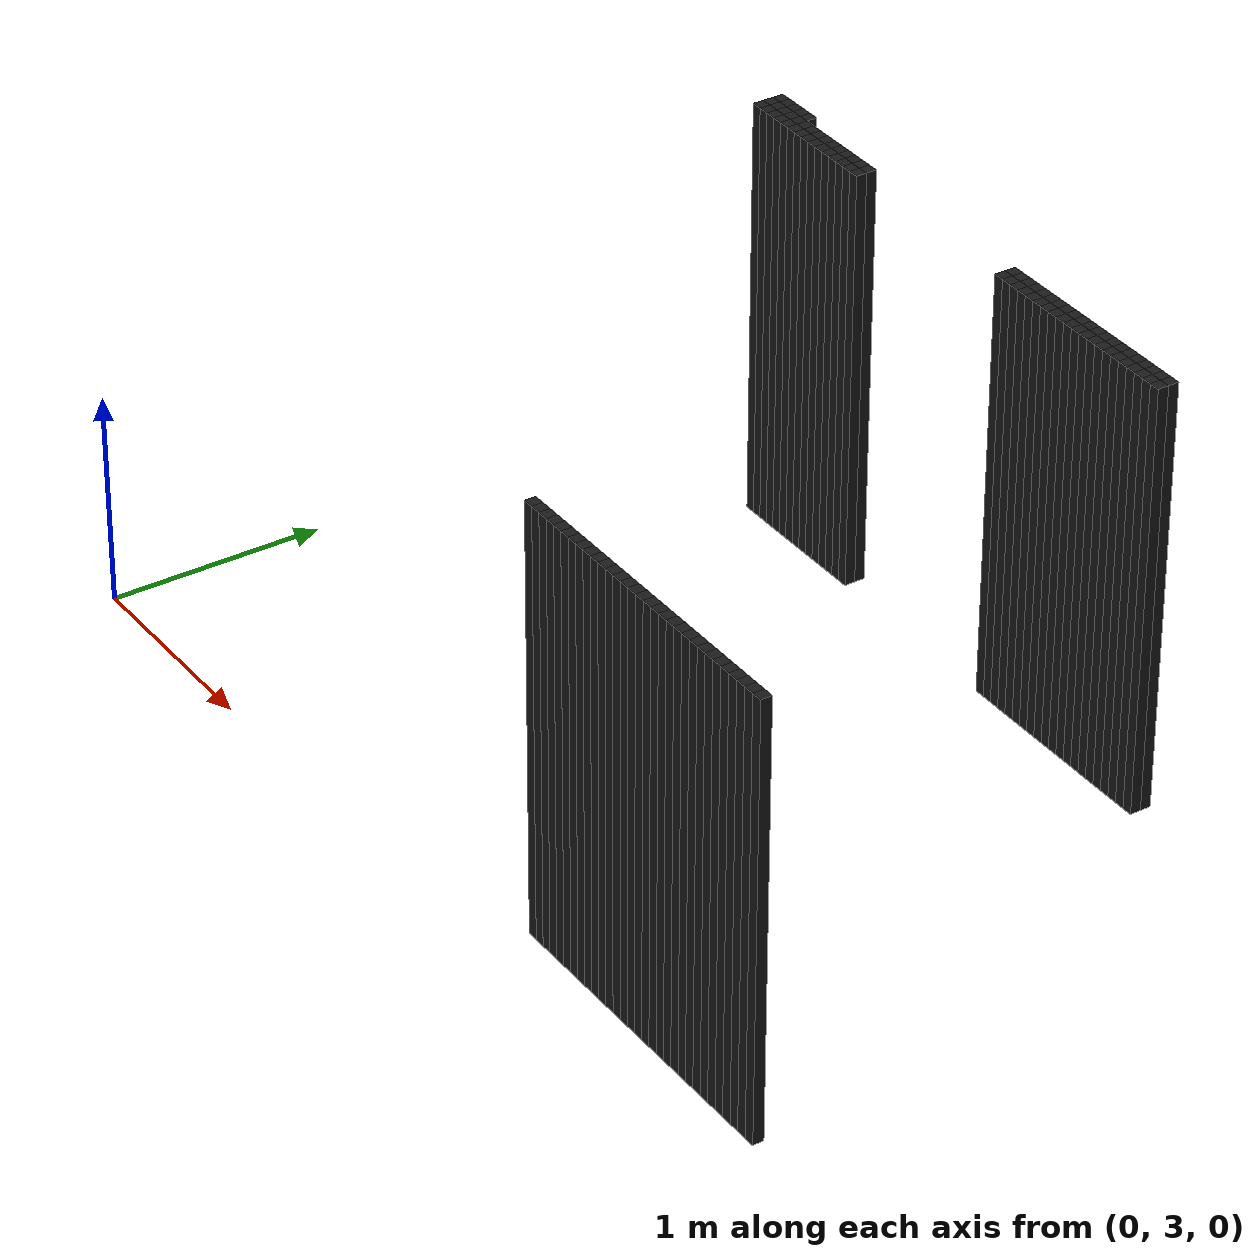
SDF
<sdf version="1.6">
 <model name="obstacle_108_51">
  <pose>0.8900000000000006 5.8 1.0 0 0 0</pose>
  <static>true</static>
  <link name="box_link">
   <collision name="box_collision"><geometry><box><size>0.05 0.05 2.0</size></box></geometry></collision>
   <visual name="box_visual">
    <geometry><box><size>0.05 0.05 2.0</size></box></geometry>
    <material><ambient>0 0 0 1</ambient><diffuse>0.1 0.1 0.1 1</diffuse></material>
   </visual>
  </link>
 </model>
 <model name="obstacle_109_51">
  <pose>0.9400000000000004 5.8 1.0 0 0 0</pose>
  <static>true</static>
  <link name="box_link">
   <collision name="box_collision"><geometry><box><size>0.05 0.05 2.0</size></box></geometry></collision>
   <visual name="box_visual">
    <geometry><box><size>0.05 0.05 2.0</size></box></geometry>
    <material><ambient>0 0 0 1</ambient><diffuse>0.1 0.1 0.1 1</diffuse></material>
   </visual>
  </link>
 </model>
 <model name="obstacle_110_51">
  <pose>0.9900000000000002 5.8 1.0 0 0 0</pose>
  <static>true</static>
  <link name="box_link">
   <collision name="box_collision"><geometry><box><size>0.05 0.05 2.0</size></box></geometry></collision>
   <visual name="box_visual">
    <geometry><box><size>0.05 0.05 2.0</size></box></geometry>
    <material><ambient>0 0 0 1</ambient><diffuse>0.1 0.1 0.1 1</diffuse></material>
   </visual>
  </link>
 </model>
 <model name="obstacle_111_51">
  <pose>1.040000000000001 5.8 1.0 0 0 0</pose>
  <static>true</static>
  <link name="box_link">
   <collision name="box_collision"><geometry><box><size>0.05 0.05 2.0</size></box></geometry></collision>
   <visual name="box_visual">
    <geometry><box><size>0.05 0.05 2.0</size></box></geometry>
    <material><ambient>0 0 0 1</ambient><diffuse>0.1 0.1 0.1 1</diffuse></material>
   </visual>
  </link>
 </model>
 <model name="obstacle_112_51">
  <pose>1.0900000000000007 5.8 1.0 0 0 0</pose>
  <static>true</static>
  <link name="box_link">
   <collision name="box_collision"><geometry><box><size>0.05 0.05 2.0</size></box></geometry></collision>
   <visual name="box_visual">
    <geometry><box><size>0.05 0.05 2.0</size></box></geometry>
    <material><ambient>0 0 0 1</ambient><diffuse>0.1 0.1 0.1 1</diffuse></material>
   </visual>
  </link>
 </model>
 <model name="obstacle_108_52">
  <pose>0.8900000000000006 5.75 1.0 0 0 0</pose>
  <static>true</static>
  <link name="box_link">
   <collision name="box_collision"><geometry><box><size>0.05 0.05 2.0</size></box></geometry></collision>
   <visual name="box_visual">
    <geometry><box><size>0.05 0.05 2.0</size></box></geometry>
    <material><ambient>0 0 0 1</ambient><diffuse>0.1 0.1 0.1 1</diffuse></material>
   </visual>
  </link>
 </model>
 <model name="obstacle_109_52">
  <pose>0.9400000000000004 5.75 1.0 0 0 0</pose>
  <static>true</static>
  <link name="box_link">
   <collision name="box_collision"><geometry><box><size>0.05 0.05 2.0</size></box></geometry></collision>
   <visual name="box_visual">
    <geometry><box><size>0.05 0.05 2.0</size></box></geometry>
    <material><ambient>0 0 0 1</ambient><diffuse>0.1 0.1 0.1 1</diffuse></material>
   </visual>
  </link>
 </model>
 <model name="obstacle_110_52">
  <pose>0.9900000000000002 5.75 1.0 0 0 0</pose>
  <static>true</static>
  <link name="box_link">
   <collision name="box_collision"><geometry><box><size>0.05 0.05 2.0</size></box></geometry></collision>
   <visual name="box_visual">
    <geometry><box><size>0.05 0.05 2.0</size></box></geometry>
    <material><ambient>0 0 0 1</ambient><diffuse>0.1 0.1 0.1 1</diffuse></material>
   </visual>
  </link>
 </model>
 <model name="obstacle_111_52">
  <pose>1.040000000000001 5.75 1.0 0 0 0</pose>
  <static>true</static>
  <link name="box_link">
   <collision name="box_collision"><geometry><box><size>0.05 0.05 2.0</size></box></geometry></collision>
   <visual name="box_visual">
    <geometry><box><size>0.05 0.05 2.0</size></box></geometry>
    <material><ambient>0 0 0 1</ambient><diffuse>0.1 0.1 0.1 1</diffuse></material>
   </visual>
  </link>
 </model>
 <model name="obstacle_112_52">
  <pose>1.0900000000000007 5.75 1.0 0 0 0</pose>
  <static>true</static>
  <link name="box_link">
   <collision name="box_collision"><geometry><box><size>0.05 0.05 2.0</size></box></geometry></collision>
   <visual name="box_visual">
    <geometry><box><size>0.05 0.05 2.0</size></box></geometry>
    <material><ambient>0 0 0 1</ambient><diffuse>0.1 0.1 0.1 1</diffuse></material>
   </visual>
  </link>
 </model>
 <model name="obstacle_113_52">
  <pose>1.1400000000000006 5.75 1.0 0 0 0</pose>
  <static>true</static>
  <link name="box_link">
   <collision name="box_collision"><geometry><box><size>0.05 0.05 2.0</size></box></geometry></collision>
   <visual name="box_visual">
    <geometry><box><size>0.05 0.05 2.0</size></box></geometry>
    <material><ambient>0 0 0 1</ambient><diffuse>0.1 0.1 0.1 1</diffuse></material>
   </visual>
  </link>
 </model>
 <model name="obstacle_114_52">
  <pose>1.1900000000000004 5.75 1.0 0 0 0</pose>
  <static>true</static>
  <link name="box_link">
   <collision name="box_collision"><geometry><box><size>0.05 0.05 2.0</size></box></geometry></collision>
   <visual name="box_visual">
    <geometry><box><size>0.05 0.05 2.0</size></box></geometry>
    <material><ambient>0 0 0 1</ambient><diffuse>0.1 0.1 0.1 1</diffuse></material>
   </visual>
  </link>
 </model>
 <model name="obstacle_115_52">
  <pose>1.2400000000000002 5.75 1.0 0 0 0</pose>
  <static>true</static>
  <link name="box_link">
   <collision name="box_collision"><geometry><box><size>0.05 0.05 2.0</size></box></geometry></collision>
   <visual name="box_visual">
    <geometry><box><size>0.05 0.05 2.0</size></box></geometry>
    <material><ambient>0 0 0 1</ambient><diffuse>0.1 0.1 0.1 1</diffuse></material>
   </visual>
  </link>
 </model>
 <model name="obstacle_116_52">
  <pose>1.290000000000001 5.75 1.0 0 0 0</pose>
  <static>true</static>
  <link name="box_link">
   <collision name="box_collision"><geometry><box><size>0.05 0.05 2.0</size></box></geometry></collision>
   <visual name="box_visual">
    <geometry><box><size>0.05 0.05 2.0</size></box></geometry>
    <material><ambient>0 0 0 1</ambient><diffuse>0.1 0.1 0.1 1</diffuse></material>
   </visual>
  </link>
 </model>
 <model name="obstacle_117_52">
  <pose>1.3400000000000007 5.75 1.0 0 0 0</pose>
  <static>true</static>
  <link name="box_link">
   <collision name="box_collision"><geometry><box><size>0.05 0.05 2.0</size></box></geometry></collision>
   <visual name="box_visual">
    <geometry><box><size>0.05 0.05 2.0</size></box></geometry>
    <material><ambient>0 0 0 1</ambient><diffuse>0.1 0.1 0.1 1</diffuse></material>
   </visual>
  </link>
 </model>
 <model name="obstacle_118_52">
  <pose>1.3900000000000006 5.75 1.0 0 0 0</pose>
  <static>true</static>
  <link name="box_link">
   <collision name="box_collision"><geometry><box><size>0.05 0.05 2.0</size></box></geometry></collision>
   <visual name="box_visual">
    <geometry><box><size>0.05 0.05 2.0</size></box></geometry>
    <material><ambient>0 0 0 1</ambient><diffuse>0.1 0.1 0.1 1</diffuse></material>
   </visual>
  </link>
 </model>
 <model name="obstacle_119_52">
  <pose>1.4400000000000004 5.75 1.0 0 0 0</pose>
  <static>true</static>
  <link name="box_link">
   <collision name="box_collision"><geometry><box><size>0.05 0.05 2.0</size></box></geometry></collision>
   <visual name="box_visual">
    <geometry><box><size>0.05 0.05 2.0</size></box></geometry>
    <material><ambient>0 0 0 1</ambient><diffuse>0.1 0.1 0.1 1</diffuse></material>
   </visual>
  </link>
 </model>
 <model name="obstacle_120_52">
  <pose>1.4900000000000002 5.75 1.0 0 0 0</pose>
  <static>true</static>
  <link name="box_link">
   <collision name="box_collision"><geometry><box><size>0.05 0.05 2.0</size></box></geometry></collision>
   <visual name="box_visual">
    <geometry><box><size>0.05 0.05 2.0</size></box></geometry>
    <material><ambient>0 0 0 1</ambient><diffuse>0.1 0.1 0.1 1</diffuse></material>
   </visual>
  </link>
 </model>
 <model name="obstacle_121_52">
  <pose>1.540000000000001 5.75 1.0 0 0 0</pose>
  <static>true</static>
  <link name="box_link">
   <collision name="box_collision"><geometry><box><size>0.05 0.05 2.0</size></box></geometry></collision>
   <visual name="box_visual">
    <geometry><box><size>0.05 0.05 2.0</size></box></geometry>
    <material><ambient>0 0 0 1</ambient><diffuse>0.1 0.1 0.1 1</diffuse></material>
   </visual>
  </link>
 </model>
 <model name="obstacle_122_52">
  <pose>1.5900000000000007 5.75 1.0 0 0 0</pose>
  <static>true</static>
  <link name="box_link">
   <collision name="box_collision"><geometry><box><size>0.05 0.05 2.0</size></box></geometry></collision>
   <visual name="box_visual">
    <geometry><box><size>0.05 0.05 2.0</size></box></geometry>
    <material><ambient>0 0 0 1</ambient><diffuse>0.1 0.1 0.1 1</diffuse></material>
   </visual>
  </link>
 </model>
 <model name="obstacle_142_52">
  <pose>2.5900000000000007 5.75 1.0 0 0 0</pose>
  <static>true</static>
  <link name="box_link">
   <collision name="box_collision"><geometry><box><size>0.05 0.05 2.0</size></box></geometry></collision>
   <visual name="box_visual">
    <geometry><box><size>0.05 0.05 2.0</size></box></geometry>
    <material><ambient>0 0 0 1</ambient><diffuse>0.1 0.1 0.1 1</diffuse></material>
   </visual>
  </link>
 </model>
 <model name="obstacle_143_52">
  <pose>2.6400000000000006 5.75 1.0 0 0 0</pose>
  <static>true</static>
  <link name="box_link">
   <collision name="box_collision"><geometry><box><size>0.05 0.05 2.0</size></box></geometry></collision>
   <visual name="box_visual">
    <geometry><box><size>0.05 0.05 2.0</size></box></geometry>
    <material><ambient>0 0 0 1</ambient><diffuse>0.1 0.1 0.1 1</diffuse></material>
   </visual>
  </link>
 </model>
 <model name="obstacle_144_52">
  <pose>2.6900000000000004 5.75 1.0 0 0 0</pose>
  <static>true</static>
  <link name="box_link">
   <collision name="box_collision"><geometry><box><size>0.05 0.05 2.0</size></box></geometry></collision>
   <visual name="box_visual">
    <geometry><box><size>0.05 0.05 2.0</size></box></geometry>
    <material><ambient>0 0 0 1</ambient><diffuse>0.1 0.1 0.1 1</diffuse></material>
   </visual>
  </link>
 </model>
 <model name="obstacle_145_52">
  <pose>2.74 5.75 1.0 0 0 0</pose>
  <static>true</static>
  <link name="box_link">
   <collision name="box_collision"><geometry><box><size>0.05 0.05 2.0</size></box></geometry></collision>
   <visual name="box_visual">
    <geometry><box><size>0.05 0.05 2.0</size></box></geometry>
    <material><ambient>0 0 0 1</ambient><diffuse>0.1 0.1 0.1 1</diffuse></material>
   </visual>
  </link>
 </model>
 <model name="obstacle_146_52">
  <pose>2.790000000000001 5.75 1.0 0 0 0</pose>
  <static>true</static>
  <link name="box_link">
   <collision name="box_collision"><geometry><box><size>0.05 0.05 2.0</size></box></geometry></collision>
   <visual name="box_visual">
    <geometry><box><size>0.05 0.05 2.0</size></box></geometry>
    <material><ambient>0 0 0 1</ambient><diffuse>0.1 0.1 0.1 1</diffuse></material>
   </visual>
  </link>
 </model>
 <model name="obstacle_147_52">
  <pose>2.8400000000000007 5.75 1.0 0 0 0</pose>
  <static>true</static>
  <link name="box_link">
   <collision name="box_collision"><geometry><box><size>0.05 0.05 2.0</size></box></geometry></collision>
   <visual name="box_visual">
    <geometry><box><size>0.05 0.05 2.0</size></box></geometry>
    <material><ambient>0 0 0 1</ambient><diffuse>0.1 0.1 0.1 1</diffuse></material>
   </visual>
  </link>
 </model>
 <model name="obstacle_148_52">
  <pose>2.8900000000000006 5.75 1.0 0 0 0</pose>
  <static>true</static>
  <link name="box_link">
   <collision name="box_collision"><geometry><box><size>0.05 0.05 2.0</size></box></geometry></collision>
   <visual name="box_visual">
    <geometry><box><size>0.05 0.05 2.0</size></box></geometry>
    <material><ambient>0 0 0 1</ambient><diffuse>0.1 0.1 0.1 1</diffuse></material>
   </visual>
  </link>
 </model>
 <model name="obstacle_149_52">
  <pose>2.9400000000000004 5.75 1.0 0 0 0</pose>
  <static>true</static>
  <link name="box_link">
   <collision name="box_collision"><geometry><box><size>0.05 0.05 2.0</size></box></geometry></collision>
   <visual name="box_visual">
    <geometry><box><size>0.05 0.05 2.0</size></box></geometry>
    <material><ambient>0 0 0 1</ambient><diffuse>0.1 0.1 0.1 1</diffuse></material>
   </visual>
  </link>
 </model>
 <model name="obstacle_150_52">
  <pose>2.99 5.75 1.0 0 0 0</pose>
  <static>true</static>
  <link name="box_link">
   <collision name="box_collision"><geometry><box><size>0.05 0.05 2.0</size></box></geometry></collision>
   <visual name="box_visual">
    <geometry><box><size>0.05 0.05 2.0</size></box></geometry>
    <material><ambient>0 0 0 1</ambient><diffuse>0.1 0.1 0.1 1</diffuse></material>
   </visual>
  </link>
 </model>
 <model name="obstacle_151_52">
  <pose>3.040000000000001 5.75 1.0 0 0 0</pose>
  <static>true</static>
  <link name="box_link">
   <collision name="box_collision"><geometry><box><size>0.05 0.05 2.0</size></box></geometry></collision>
   <visual name="box_visual">
    <geometry><box><size>0.05 0.05 2.0</size></box></geometry>
    <material><ambient>0 0 0 1</ambient><diffuse>0.1 0.1 0.1 1</diffuse></material>
   </visual>
  </link>
 </model>
 <model name="obstacle_152_52">
  <pose>3.0900000000000007 5.75 1.0 0 0 0</pose>
  <static>true</static>
  <link name="box_link">
   <collision name="box_collision"><geometry><box><size>0.05 0.05 2.0</size></box></geometry></collision>
   <visual name="box_visual">
    <geometry><box><size>0.05 0.05 2.0</size></box></geometry>
    <material><ambient>0 0 0 1</ambient><diffuse>0.1 0.1 0.1 1</diffuse></material>
   </visual>
  </link>
 </model>
 <model name="obstacle_153_52">
  <pose>3.1400000000000006 5.75 1.0 0 0 0</pose>
  <static>true</static>
  <link name="box_link">
   <collision name="box_collision"><geometry><box><size>0.05 0.05 2.0</size></box></geometry></collision>
   <visual name="box_visual">
    <geometry><box><size>0.05 0.05 2.0</size></box></geometry>
    <material><ambient>0 0 0 1</ambient><diffuse>0.1 0.1 0.1 1</diffuse></material>
   </visual>
  </link>
 </model>
 <model name="obstacle_154_52">
  <pose>3.1900000000000004 5.75 1.0 0 0 0</pose>
  <static>true</static>
  <link name="box_link">
   <collision name="box_collision"><geometry><box><size>0.05 0.05 2.0</size></box></geometry></collision>
   <visual name="box_visual">
    <geometry><box><size>0.05 0.05 2.0</size></box></geometry>
    <material><ambient>0 0 0 1</ambient><diffuse>0.1 0.1 0.1 1</diffuse></material>
   </visual>
  </link>
 </model>
 <model name="obstacle_155_52">
  <pose>3.24 5.75 1.0 0 0 0</pose>
  <static>true</static>
  <link name="box_link">
   <collision name="box_collision"><geometry><box><size>0.05 0.05 2.0</size></box></geometry></collision>
   <visual name="box_visual">
    <geometry><box><size>0.05 0.05 2.0</size></box></geometry>
    <material><ambient>0 0 0 1</ambient><diffuse>0.1 0.1 0.1 1</diffuse></material>
   </visual>
  </link>
 </model>
 <model name="obstacle_156_52">
  <pose>3.290000000000001 5.75 1.0 0 0 0</pose>
  <static>true</static>
  <link name="box_link">
   <collision name="box_collision"><geometry><box><size>0.05 0.05 2.0</size></box></geometry></collision>
   <visual name="box_visual">
    <geometry><box><size>0.05 0.05 2.0</size></box></geometry>
    <material><ambient>0 0 0 1</ambient><diffuse>0.1 0.1 0.1 1</diffuse></material>
   </visual>
  </link>
 </model>
 <model name="obstacle_157_52">
  <pose>3.3400000000000007 5.75 1.0 0 0 0</pose>
  <static>true</static>
  <link name="box_link">
   <collision name="box_collision"><geometry><box><size>0.05 0.05 2.0</size></box></geometry></collision>
   <visual name="box_visual">
    <geometry><box><size>0.05 0.05 2.0</size></box></geometry>
    <material><ambient>0 0 0 1</ambient><diffuse>0.1 0.1 0.1 1</diffuse></material>
   </visual>
  </link>
 </model>
 <model name="obstacle_158_52">
  <pose>3.3900000000000006 5.75 1.0 0 0 0</pose>
  <static>true</static>
  <link name="box_link">
   <collision name="box_collision"><geometry><box><size>0.05 0.05 2.0</size></box></geometry></collision>
   <visual name="box_visual">
    <geometry><box><size>0.05 0.05 2.0</size></box></geometry>
    <material><ambient>0 0 0 1</ambient><diffuse>0.1 0.1 0.1 1</diffuse></material>
   </visual>
  </link>
 </model>
 <model name="obstacle_159_52">
  <pose>3.4400000000000004 5.75 1.0 0 0 0</pose>
  <static>true</static>
  <link name="box_link">
   <collision name="box_collision"><geometry><box><size>0.05 0.05 2.0</size></box></geometry></collision>
   <visual name="box_visual">
    <geometry><box><size>0.05 0.05 2.0</size></box></geometry>
    <material><ambient>0 0 0 1</ambient><diffuse>0.1 0.1 0.1 1</diffuse></material>
   </visual>
  </link>
 </model>
 <model name="obstacle_160_52">
  <pose>3.49 5.75 1.0 0 0 0</pose>
  <static>true</static>
  <link name="box_link">
   <collision name="box_collision"><geometry><box><size>0.05 0.05 2.0</size></box></geometry></collision>
   <visual name="box_visual">
    <geometry><box><size>0.05 0.05 2.0</size></box></geometry>
    <material><ambient>0 0 0 1</ambient><diffuse>0.1 0.1 0.1 1</diffuse></material>
   </visual>
  </link>
 </model>
 <model name="obstacle_161_52">
  <pose>3.540000000000001 5.75 1.0 0 0 0</pose>
  <static>true</static>
  <link name="box_link">
   <collision name="box_collision"><geometry><box><size>0.05 0.05 2.0</size></box></geometry></collision>
   <visual name="box_visual">
    <geometry><box><size>0.05 0.05 2.0</size></box></geometry>
    <material><ambient>0 0 0 1</ambient><diffuse>0.1 0.1 0.1 1</diffuse></material>
   </visual>
  </link>
 </model>
 <model name="obstacle_162_52">
  <pose>3.59 5.75 1.0 0 0 0</pose>
  <static>true</static>
  <link name="box_link">
   <collision name="box_collision"><geometry><box><size>0.05 0.05 2.0</size></box></geometry></collision>
   <visual name="box_visual">
    <geometry><box><size>0.05 0.05 2.0</size></box></geometry>
    <material><ambient>0 0 0 1</ambient><diffuse>0.1 0.1 0.1 1</diffuse></material>
   </visual>
  </link>
 </model>
 <model name="obstacle_108_53">
  <pose>0.8900000000000006 5.7 1.0 0 0 0</pose>
  <static>true</static>
  <link name="box_link">
   <collision name="box_collision"><geometry><box><size>0.05 0.05 2.0</size></box></geometry></collision>
   <visual name="box_visual">
    <geometry><box><size>0.05 0.05 2.0</size></box></geometry>
    <material><ambient>0 0 0 1</ambient><diffuse>0.1 0.1 0.1 1</diffuse></material>
   </visual>
  </link>
 </model>
 <model name="obstacle_109_53">
  <pose>0.9400000000000004 5.7 1.0 0 0 0</pose>
  <static>true</static>
  <link name="box_link">
   <collision name="box_collision"><geometry><box><size>0.05 0.05 2.0</size></box></geometry></collision>
   <visual name="box_visual">
    <geometry><box><size>0.05 0.05 2.0</size></box></geometry>
    <material><ambient>0 0 0 1</ambient><diffuse>0.1 0.1 0.1 1</diffuse></material>
   </visual>
  </link>
 </model>
 <model name="obstacle_110_53">
  <pose>0.9900000000000002 5.7 1.0 0 0 0</pose>
  <static>true</static>
  <link name="box_link">
   <collision name="box_collision"><geometry><box><size>0.05 0.05 2.0</size></box></geometry></collision>
   <visual name="box_visual">
    <geometry><box><size>0.05 0.05 2.0</size></box></geometry>
    <material><ambient>0 0 0 1</ambient><diffuse>0.1 0.1 0.1 1</diffuse></material>
   </visual>
  </link>
 </model>
 <model name="obstacle_111_53">
  <pose>1.040000000000001 5.7 1.0 0 0 0</pose>
  <static>true</static>
  <link name="box_link">
   <collision name="box_collision"><geometry><box><size>0.05 0.05 2.0</size></box></geometry></collision>
   <visual name="box_visual">
    <geometry><box><size>0.05 0.05 2.0</size></box></geometry>
    <material><ambient>0 0 0 1</ambient><diffuse>0.1 0.1 0.1 1</diffuse></material>
   </visual>
  </link>
 </model>
 <model name="obstacle_112_53">
  <pose>1.0900000000000007 5.7 1.0 0 0 0</pose>
  <static>true</static>
  <link name="box_link">
   <collision name="box_collision"><geometry><box><size>0.05 0.05 2.0</size></box></geometry></collision>
   <visual name="box_visual">
    <geometry><box><size>0.05 0.05 2.0</size></box></geometry>
    <material><ambient>0 0 0 1</ambient><diffuse>0.1 0.1 0.1 1</diffuse></material>
   </visual>
  </link>
 </model>
 <model name="obstacle_113_53">
  <pose>1.1400000000000006 5.7 1.0 0 0 0</pose>
  <static>true</static>
  <link name="box_link">
   <collision name="box_collision"><geometry><box><size>0.05 0.05 2.0</size></box></geometry></collision>
   <visual name="box_visual">
    <geometry><box><size>0.05 0.05 2.0</size></box></geometry>
    <material><ambient>0 0 0 1</ambient><diffuse>0.1 0.1 0.1 1</diffuse></material>
   </visual>
  </link>
 </model>
 <model name="obstacle_114_53">
  <pose>1.1900000000000004 5.7 1.0 0 0 0</pose>
  <static>true</static>
  <link name="box_link">
   <collision name="box_collision"><geometry><box><size>0.05 0.05 2.0</size></box></geometry></collision>
   <visual name="box_visual">
    <geometry><box><size>0.05 0.05 2.0</size></box></geometry>
    <material><ambient>0 0 0 1</ambient><diffuse>0.1 0.1 0.1 1</diffuse></material>
   </visual>
  </link>
 </model>
 <model name="obstacle_115_53">
  <pose>1.2400000000000002 5.7 1.0 0 0 0</pose>
  <static>true</static>
  <link name="box_link">
   <collision name="box_collision"><geometry><box><size>0.05 0.05 2.0</size></box></geometry></collision>
   <visual name="box_visual">
    <geometry><box><size>0.05 0.05 2.0</size></box></geometry>
    <material><ambient>0 0 0 1</ambient><diffuse>0.1 0.1 0.1 1</diffuse></material>
   </visual>
  </link>
 </model>
 <model name="obstacle_116_53">
  <pose>1.290000000000001 5.7 1.0 0 0 0</pose>
  <static>true</static>
  <link name="box_link">
   <collision name="box_collision"><geometry><box><size>0.05 0.05 2.0</size></box></geometry></collision>
   <visual name="box_visual">
    <geometry><box><size>0.05 0.05 2.0</size></box></geometry>
    <material><ambient>0 0 0 1</ambient><diffuse>0.1 0.1 0.1 1</diffuse></material>
   </visual>
  </link>
 </model>
 <model name="obstacle_117_53">
  <pose>1.3400000000000007 5.7 1.0 0 0 0</pose>
  <static>true</static>
  <link name="box_link">
   <collision name="box_collision"><geometry><box><size>0.05 0.05 2.0</size></box></geometry></collision>
   <visual name="box_visual">
    <geometry><box><size>0.05 0.05 2.0</size></box></geometry>
    <material><ambient>0 0 0 1</ambient><diffuse>0.1 0.1 0.1 1</diffuse></material>
   </visual>
  </link>
 </model>
 <model name="obstacle_118_53">
  <pose>1.3900000000000006 5.7 1.0 0 0 0</pose>
  <static>true</static>
  <link name="box_link">
   <collision name="box_collision"><geometry><box><size>0.05 0.05 2.0</size></box></geometry></collision>
   <visual name="box_visual">
    <geometry><box><size>0.05 0.05 2.0</size></box></geometry>
    <material><ambient>0 0 0 1</ambient><diffuse>0.1 0.1 0.1 1</diffuse></material>
   </visual>
  </link>
 </model>
 <model name="obstacle_119_53">
  <pose>1.4400000000000004 5.7 1.0 0 0 0</pose>
  <static>true</static>
  <link name="box_link">
   <collision name="box_collision"><geometry><box><size>0.05 0.05 2.0</size></box></geometry></collision>
   <visual name="box_visual">
    <geometry><box><size>0.05 0.05 2.0</size></box></geometry>
    <material><ambient>0 0 0 1</ambient><diffuse>0.1 0.1 0.1 1</diffuse></material>
   </visual>
  </link>
 </model>
 <model name="obstacle_120_53">
  <pose>1.4900000000000002 5.7 1.0 0 0 0</pose>
  <static>true</static>
  <link name="box_link">
   <collision name="box_collision"><geometry><box><size>0.05 0.05 2.0</size></box></geometry></collision>
   <visual name="box_visual">
    <geometry><box><size>0.05 0.05 2.0</size></box></geometry>
    <material><ambient>0 0 0 1</ambient><diffuse>0.1 0.1 0.1 1</diffuse></material>
   </visual>
  </link>
 </model>
 <model name="obstacle_121_53">
  <pose>1.540000000000001 5.7 1.0 0 0 0</pose>
  <static>true</static>
  <link name="box_link">
   <collision name="box_collision"><geometry><box><size>0.05 0.05 2.0</size></box></geometry></collision>
   <visual name="box_visual">
    <geometry><box><size>0.05 0.05 2.0</size></box></geometry>
    <material><ambient>0 0 0 1</ambient><diffuse>0.1 0.1 0.1 1</diffuse></material>
   </visual>
  </link>
 </model>
 <model name="obstacle_122_53">
  <pose>1.5900000000000007 5.7 1.0 0 0 0</pose>
  <static>true</static>
  <link name="box_link">
   <collision name="box_collision"><geometry><box><size>0.05 0.05 2.0</size></box></geometry></collision>
   <visual name="box_visual">
    <geometry><box><size>0.05 0.05 2.0</size></box></geometry>
    <material><ambient>0 0 0 1</ambient><diffuse>0.1 0.1 0.1 1</diffuse></material>
   </visual>
  </link>
 </model>
 <model name="obstacle_142_53">
  <pose>2.5900000000000007 5.7 1.0 0 0 0</pose>
  <static>true</static>
  <link name="box_link">
   <collision name="box_collision"><geometry><box><size>0.05 0.05 2.0</size></box></geometry></collision>
   <visual name="box_visual">
    <geometry><box><size>0.05 0.05 2.0</size></box></geometry>
    <material><ambient>0 0 0 1</ambient><diffuse>0.1 0.1 0.1 1</diffuse></material>
   </visual>
  </link>
 </model>
 <model name="obstacle_143_53">
  <pose>2.6400000000000006 5.7 1.0 0 0 0</pose>
  <static>true</static>
  <link name="box_link">
   <collision name="box_collision"><geometry><box><size>0.05 0.05 2.0</size></box></geometry></collision>
   <visual name="box_visual">
    <geometry><box><size>0.05 0.05 2.0</size></box></geometry>
    <material><ambient>0 0 0 1</ambient><diffuse>0.1 0.1 0.1 1</diffuse></material>
   </visual>
  </link>
 </model>
 <model name="obstacle_144_53">
  <pose>2.6900000000000004 5.7 1.0 0 0 0</pose>
  <static>true</static>
  <link name="box_link">
   <collision name="box_collision"><geometry><box><size>0.05 0.05 2.0</size></box></geometry></collision>
   <visual name="box_visual">
    <geometry><box><size>0.05 0.05 2.0</size></box></geometry>
    <material><ambient>0 0 0 1</ambient><diffuse>0.1 0.1 0.1 1</diffuse></material>
   </visual>
  </link>
 </model>
 <model name="obstacle_145_53">
  <pose>2.74 5.7 1.0 0 0 0</pose>
  <static>true</static>
  <link name="box_link">
   <collision name="box_collision"><geometry><box><size>0.05 0.05 2.0</size></box></geometry></collision>
   <visual name="box_visual">
    <geometry><box><size>0.05 0.05 2.0</size></box></geometry>
    <material><ambient>0 0 0 1</ambient><diffuse>0.1 0.1 0.1 1</diffuse></material>
   </visual>
  </link>
 </model>
 <model name="obstacle_146_53">
  <pose>2.790000000000001 5.7 1.0 0 0 0</pose>
  <static>true</static>
  <link name="box_link">
   <collision name="box_collision"><geometry><box><size>0.05 0.05 2.0</size></box></geometry></collision>
   <visual name="box_visual">
    <geometry><box><size>0.05 0.05 2.0</size></box></geometry>
    <material><ambient>0 0 0 1</ambient><diffuse>0.1 0.1 0.1 1</diffuse></material>
   </visual>
  </link>
 </model>
 <model name="obstacle_147_53">
  <pose>2.8400000000000007 5.7 1.0 0 0 0</pose>
  <static>true</static>
  <link name="box_link">
   <collision name="box_collision"><geometry><box><size>0.05 0.05 2.0</size></box></geometry></collision>
   <visual name="box_visual">
    <geometry><box><size>0.05 0.05 2.0</size></box></geometry>
    <material><ambient>0 0 0 1</ambient><diffuse>0.1 0.1 0.1 1</diffuse></material>
   </visual>
  </link>
 </model>
 <model name="obstacle_148_53">
  <pose>2.8900000000000006 5.7 1.0 0 0 0</pose>
  <static>true</static>
  <link name="box_link">
   <collision name="box_collision"><geometry><box><size>0.05 0.05 2.0</size></box></geometry></collision>
   <visual name="box_visual">
    <geometry><box><size>0.05 0.05 2.0</size></box></geometry>
    <material><ambient>0 0 0 1</ambient><diffuse>0.1 0.1 0.1 1</diffuse></material>
   </visual>
  </link>
 </model>
 <model name="obstacle_149_53">
  <pose>2.9400000000000004 5.7 1.0 0 0 0</pose>
  <static>true</static>
  <link name="box_link">
   <collision name="box_collision"><geometry><box><size>0.05 0.05 2.0</size></box></geometry></collision>
   <visual name="box_visual">
    <geometry><box><size>0.05 0.05 2.0</size></box></geometry>
    <material><ambient>0 0 0 1</ambient><diffuse>0.1 0.1 0.1 1</diffuse></material>
   </visual>
  </link>
 </model>
 <model name="obstacle_150_53">
  <pose>2.99 5.7 1.0 0 0 0</pose>
  <static>true</static>
  <link name="box_link">
   <collision name="box_collision"><geometry><box><size>0.05 0.05 2.0</size></box></geometry></collision>
   <visual name="box_visual">
    <geometry><box><size>0.05 0.05 2.0</size></box></geometry>
    <material><ambient>0 0 0 1</ambient><diffuse>0.1 0.1 0.1 1</diffuse></material>
   </visual>
  </link>
 </model>
 <model name="obstacle_151_53">
  <pose>3.040000000000001 5.7 1.0 0 0 0</pose>
  <static>true</static>
  <link name="box_link">
   <collision name="box_collision"><geometry><box><size>0.05 0.05 2.0</size></box></geometry></collision>
   <visual name="box_visual">
    <geometry><box><size>0.05 0.05 2.0</size></box></geometry>
    <material><ambient>0 0 0 1</ambient><diffuse>0.1 0.1 0.1 1</diffuse></material>
   </visual>
  </link>
 </model>
 <model name="obstacle_152_53">
  <pose>3.0900000000000007 5.7 1.0 0 0 0</pose>
  <static>true</static>
  <link name="box_link">
   <collision name="box_collision"><geometry><box><size>0.05 0.05 2.0</size></box></geometry></collision>
   <visual name="box_visual">
    <geometry><box><size>0.05 0.05 2.0</size></box></geometry>
    <material><ambient>0 0 0 1</ambient><diffuse>0.1 0.1 0.1 1</diffuse></material>
   </visual>
  </link>
 </model>
 <model name="obstacle_153_53">
  <pose>3.1400000000000006 5.7 1.0 0 0 0</pose>
  <static>true</static>
  <link name="box_link">
   <collision name="box_collision"><geometry><box><size>0.05 0.05 2.0</size></box></geometry></collision>
   <visual name="box_visual">
    <geometry><box><size>0.05 0.05 2.0</size></box></geometry>
    <material><ambient>0 0 0 1</ambient><diffuse>0.1 0.1 0.1 1</diffuse></material>
   </visual>
  </link>
 </model>
 <model name="obstacle_154_53">
  <pose>3.1900000000000004 5.7 1.0 0 0 0</pose>
  <static>true</static>
  <link name="box_link">
   <collision name="box_collision"><geometry><box><size>0.05 0.05 2.0</size></box></geometry></collision>
   <visual name="box_visual">
    <geometry><box><size>0.05 0.05 2.0</size></box></geometry>
    <material><ambient>0 0 0 1</ambient><diffuse>0.1 0.1 0.1 1</diffuse></material>
   </visual>
  </link>
 </model>
 <model name="obstacle_155_53">
  <pose>3.24 5.7 1.0 0 0 0</pose>
  <static>true</static>
  <link name="box_link">
   <collision name="box_collision"><geometry><box><size>0.05 0.05 2.0</size></box></geometry></collision>
   <visual name="box_visual">
    <geometry><box><size>0.05 0.05 2.0</size></box></geometry>
    <material><ambient>0 0 0 1</ambient><diffuse>0.1 0.1 0.1 1</diffuse></material>
   </visual>
  </link>
 </model>
 <model name="obstacle_156_53">
  <pose>3.290000000000001 5.7 1.0 0 0 0</pose>
  <static>true</static>
  <link name="box_link">
   <collision name="box_collision"><geometry><box><size>0.05 0.05 2.0</size></box></geometry></collision>
   <visual name="box_visual">
    <geometry><box><size>0.05 0.05 2.0</size></box></geometry>
    <material><ambient>0 0 0 1</ambient><diffuse>0.1 0.1 0.1 1</diffuse></material>
   </visual>
  </link>
 </model>
 <model name="obstacle_157_53">
  <pose>3.3400000000000007 5.7 1.0 0 0 0</pose>
  <static>true</static>
  <link name="box_link">
   <collision name="box_collision"><geometry><box><size>0.05 0.05 2.0</size></box></geometry></collision>
   <visual name="box_visual">
    <geometry><box><size>0.05 0.05 2.0</size></box></geometry>
    <material><ambient>0 0 0 1</ambient><diffuse>0.1 0.1 0.1 1</diffuse></material>
   </visual>
  </link>
 </model>
 <model name="obstacle_158_53">
  <pose>3.3900000000000006 5.7 1.0 0 0 0</pose>
  <static>true</static>
  <link name="box_link">
   <collision name="box_collision"><geometry><box><size>0.05 0.05 2.0</size></box></geometry></collision>
   <visual name="box_visual">
    <geometry><box><size>0.05 0.05 2.0</size></box></geometry>
    <material><ambient>0 0 0 1</ambient><diffuse>0.1 0.1 0.1 1</diffuse></material>
   </visual>
  </link>
 </model>
 <model name="obstacle_159_53">
  <pose>3.4400000000000004 5.7 1.0 0 0 0</pose>
  <static>true</static>
  <link name="box_link">
   <collision name="box_collision"><geometry><box><size>0.05 0.05 2.0</size></box></geometry></collision>
   <visual name="box_visual">
    <geometry><box><size>0.05 0.05 2.0</size></box></geometry>
    <material><ambient>0 0 0 1</ambient><diffuse>0.1 0.1 0.1 1</diffuse></material>
   </visual>
  </link>
 </model>
 <model name="obstacle_160_53">
  <pose>3.49 5.7 1.0 0 0 0</pose>
  <static>true</static>
  <link name="box_link">
   <collision name="box_collision"><geometry><box><size>0.05 0.05 2.0</size></box></geometry></collision>
   <visual name="box_visual">
    <geometry><box><size>0.05 0.05 2.0</size></box></geometry>
    <material><ambient>0 0 0 1</ambient><diffuse>0.1 0.1 0.1 1</diffuse></material>
   </visual>
  </link>
 </model>
 <model name="obstacle_161_53">
  <pose>3.540000000000001 5.7 1.0 0 0 0</pose>
  <static>true</static>
  <link name="box_link">
   <collision name="box_collision"><geometry><box><size>0.05 0.05 2.0</size></box></geometry></collision>
   <visual name="box_visual">
    <geometry><box><size>0.05 0.05 2.0</size></box></geometry>
    <material><ambient>0 0 0 1</ambient><diffuse>0.1 0.1 0.1 1</diffuse></material>
   </visual>
  </link>
 </model>
 <model name="obstacle_162_53">
  <pose>3.59 5.7 1.0 0 0 0</pose>
  <static>true</static>
  <link name="box_link">
   <collision name="box_collision"><geometry><box><size>0.05 0.05 2.0</size></box></geometry></collision>
   <visual name="box_visual">
    <geometry><box><size>0.05 0.05 2.0</size></box></geometry>
    <material><ambient>0 0 0 1</ambient><diffuse>0.1 0.1 0.1 1</diffuse></material>
   </visual>
  </link>
 </model>
 <model name="obstacle_150_102">
  <pose>2.99 3.25 1.0 0 0 0</pose>
  <static>true</static>
  <link name="box_link">
   <collision name="box_collision"><geometry><box><size>0.05 0.05 2.0</size></box></geometry></collision>
   <visual name="box_visual">
    <geometry><box><size>0.05 0.05 2.0</size></box></geometry>
    <material><ambient>0 0 0 1</ambient><diffuse>0.1 0.1 0.1 1</diffuse></material>
   </visual>
  </link>
 </model>
 <model name="obstacle_151_102">
  <pose>3.040000000000001 3.25 1.0 0 0 0</pose>
  <static>true</static>
  <link name="box_link">
   <collision name="box_collision"><geometry><box><size>0.05 0.05 2.0</size></box></geometry></collision>
   <visual name="box_visual">
    <geometry><box><size>0.05 0.05 2.0</size></box></geometry>
    <material><ambient>0 0 0 1</ambient><diffuse>0.1 0.1 0.1 1</diffuse></material>
   </visual>
  </link>
 </model>
 <model name="obstacle_152_102">
  <pose>3.0900000000000007 3.25 1.0 0 0 0</pose>
  <static>true</static>
  <link name="box_link">
   <collision name="box_collision"><geometry><box><size>0.05 0.05 2.0</size></box></geometry></collision>
   <visual name="box_visual">
    <geometry><box><size>0.05 0.05 2.0</size></box></geometry>
    <material><ambient>0 0 0 1</ambient><diffuse>0.1 0.1 0.1 1</diffuse></material>
   </visual>
  </link>
 </model>
 <model name="obstacle_153_102">
  <pose>3.1400000000000006 3.25 1.0 0 0 0</pose>
  <static>true</static>
  <link name="box_link">
   <collision name="box_collision"><geometry><box><size>0.05 0.05 2.0</size></box></geometry></collision>
   <visual name="box_visual">
    <geometry><box><size>0.05 0.05 2.0</size></box></geometry>
    <material><ambient>0 0 0 1</ambient><diffuse>0.1 0.1 0.1 1</diffuse></material>
   </visual>
  </link>
 </model>
 <model name="obstacle_154_102">
  <pose>3.1900000000000004 3.25 1.0 0 0 0</pose>
  <static>true</static>
  <link name="box_link">
   <collision name="box_collision"><geometry><box><size>0.05 0.05 2.0</size></box></geometry></collision>
   <visual name="box_visual">
    <geometry><box><size>0.05 0.05 2.0</size></box></geometry>
    <material><ambient>0 0 0 1</ambient><diffuse>0.1 0.1 0.1 1</diffuse></material>
   </visual>
  </link>
 </model>
 <model name="obstacle_155_102">
  <pose>3.24 3.25 1.0 0 0 0</pose>
  <static>true</static>
  <link name="box_link">
   <collision name="box_collision"><geometry><box><size>0.05 0.05 2.0</size></box></geometry></collision>
   <visual name="box_visual">
    <geometry><box><size>0.05 0.05 2.0</size></box></geometry>
    <material><ambient>0 0 0 1</ambient><diffuse>0.1 0.1 0.1 1</diffuse></material>
   </visual>
  </link>
 </model>
 <model name="obstacle_156_102">
  <pose>3.290000000000001 3.25 1.0 0 0 0</pose>
  <static>true</static>
  <link name="box_link">
   <collision name="box_collision"><geometry><box><size>0.05 0.05 2.0</size></box></geometry></collision>
   <visual name="box_visual">
    <geometry><box><size>0.05 0.05 2.0</size></box></geometry>
    <material><ambient>0 0 0 1</ambient><diffuse>0.1 0.1 0.1 1</diffuse></material>
   </visual>
  </link>
 </model>
 <model name="obstacle_157_102">
  <pose>3.3400000000000007 3.25 1.0 0 0 0</pose>
  <static>true</static>
  <link name="box_link">
   <collision name="box_collision"><geometry><box><size>0.05 0.05 2.0</size></box></geometry></collision>
   <visual name="box_visual">
    <geometry><box><size>0.05 0.05 2.0</size></box></geometry>
    <material><ambient>0 0 0 1</ambient><diffuse>0.1 0.1 0.1 1</diffuse></material>
   </visual>
  </link>
 </model>
 <model name="obstacle_158_102">
  <pose>3.3900000000000006 3.25 1.0 0 0 0</pose>
  <static>true</static>
  <link name="box_link">
   <collision name="box_collision"><geometry><box><size>0.05 0.05 2.0</size></box></geometry></collision>
   <visual name="box_visual">
    <geometry><box><size>0.05 0.05 2.0</size></box></geometry>
    <material><ambient>0 0 0 1</ambient><diffuse>0.1 0.1 0.1 1</diffuse></material>
   </visual>
  </link>
 </model>
 <model name="obstacle_159_102">
  <pose>3.4400000000000004 3.25 1.0 0 0 0</pose>
  <static>true</static>
  <link name="box_link">
   <collision name="box_collision"><geometry><box><size>0.05 0.05 2.0</size></box></geometry></collision>
   <visual name="box_visual">
    <geometry><box><size>0.05 0.05 2.0</size></box></geometry>
    <material><ambient>0 0 0 1</ambient><diffuse>0.1 0.1 0.1 1</diffuse></material>
   </visual>
  </link>
 </model>
 <model name="obstacle_160_102">
  <pose>3.49 3.25 1.0 0 0 0</pose>
  <static>true</static>
  <link name="box_link">
   <collision name="box_collision"><geometry><box><size>0.05 0.05 2.0</size></box></geometry></collision>
   <visual name="box_visual">
    <geometry><box><size>0.05 0.05 2.0</size></box></geometry>
    <material><ambient>0 0 0 1</ambient><diffuse>0.1 0.1 0.1 1</diffuse></material>
   </visual>
  </link>
 </model>
 <model name="obstacle_161_102">
  <pose>3.540000000000001 3.25 1.0 0 0 0</pose>
  <static>true</static>
  <link name="box_link">
   <collision name="box_collision"><geometry><box><size>0.05 0.05 2.0</size></box></geometry></collision>
   <visual name="box_visual">
    <geometry><box><size>0.05 0.05 2.0</size></box></geometry>
    <material><ambient>0 0 0 1</ambient><diffuse>0.1 0.1 0.1 1</diffuse></material>
   </visual>
  </link>
 </model>
 <model name="obstacle_162_102">
  <pose>3.59 3.25 1.0 0 0 0</pose>
  <static>true</static>
  <link name="box_link">
   <collision name="box_collision"><geometry><box><size>0.05 0.05 2.0</size></box></geometry></collision>
   <visual name="box_visual">
    <geometry><box><size>0.05 0.05 2.0</size></box></geometry>
    <material><ambient>0 0 0 1</ambient><diffuse>0.1 0.1 0.1 1</diffuse></material>
   </visual>
  </link>
 </model>
 <model name="obstacle_163_102">
  <pose>3.6400000000000006 3.25 1.0 0 0 0</pose>
  <static>true</static>
  <link name="box_link">
   <collision name="box_collision"><geometry><box><size>0.05 0.05 2.0</size></box></geometry></collision>
   <visual name="box_visual">
    <geometry><box><size>0.05 0.05 2.0</size></box></geometry>
    <material><ambient>0 0 0 1</ambient><diffuse>0.1 0.1 0.1 1</diffuse></material>
   </visual>
  </link>
 </model>
 <model name="obstacle_164_102">
  <pose>3.6900000000000013 3.25 1.0 0 0 0</pose>
  <static>true</static>
  <link name="box_link">
   <collision name="box_collision"><geometry><box><size>0.05 0.05 2.0</size></box></geometry></collision>
   <visual name="box_visual">
    <geometry><box><size>0.05 0.05 2.0</size></box></geometry>
    <material><ambient>0 0 0 1</ambient><diffuse>0.1 0.1 0.1 1</diffuse></material>
   </visual>
  </link>
 </model>
 <model name="obstacle_165_102">
  <pose>3.74 3.25 1.0 0 0 0</pose>
  <static>true</static>
  <link name="box_link">
   <collision name="box_collision"><geometry><box><size>0.05 0.05 2.0</size></box></geometry></collision>
   <visual name="box_visual">
    <geometry><box><size>0.05 0.05 2.0</size></box></geometry>
    <material><ambient>0 0 0 1</ambient><diffuse>0.1 0.1 0.1 1</diffuse></material>
   </visual>
  </link>
 </model>
 <model name="obstacle_166_102">
  <pose>3.790000000000001 3.25 1.0 0 0 0</pose>
  <static>true</static>
  <link name="box_link">
   <collision name="box_collision"><geometry><box><size>0.05 0.05 2.0</size></box></geometry></collision>
   <visual name="box_visual">
    <geometry><box><size>0.05 0.05 2.0</size></box></geometry>
    <material><ambient>0 0 0 1</ambient><diffuse>0.1 0.1 0.1 1</diffuse></material>
   </visual>
  </link>
 </model>
 <model name="obstacle_167_102">
  <pose>3.84 3.25 1.0 0 0 0</pose>
  <static>true</static>
  <link name="box_link">
   <collision name="box_collision"><geometry><box><size>0.05 0.05 2.0</size></box></geometry></collision>
   <visual name="box_visual">
    <geometry><box><size>0.05 0.05 2.0</size></box></geometry>
    <material><ambient>0 0 0 1</ambient><diffuse>0.1 0.1 0.1 1</diffuse></material>
   </visual>
  </link>
 </model>
 <model name="obstacle_168_102">
  <pose>3.8900000000000006 3.25 1.0 0 0 0</pose>
  <static>true</static>
  <link name="box_link">
   <collision name="box_collision"><geometry><box><size>0.05 0.05 2.0</size></box></geometry></collision>
   <visual name="box_visual">
    <geometry><box><size>0.05 0.05 2.0</size></box></geometry>
    <material><ambient>0 0 0 1</ambient><diffuse>0.1 0.1 0.1 1</diffuse></material>
   </visual>
  </link>
 </model>
 <model name="obstacle_169_102">
  <pose>3.9400000000000013 3.25 1.0 0 0 0</pose>
  <static>true</static>
  <link name="box_link">
   <collision name="box_collision"><geometry><box><size>0.05 0.05 2.0</size></box></geometry></collision>
   <visual name="box_visual">
    <geometry><box><size>0.05 0.05 2.0</size></box></geometry>
    <material><ambient>0 0 0 1</ambient><diffuse>0.1 0.1 0.1 1</diffuse></material>
   </visual>
  </link>
 </model>
 <model name="obstacle_170_102">
  <pose>3.99 3.25 1.0 0 0 0</pose>
  <static>true</static>
  <link name="box_link">
   <collision name="box_collision"><geometry><box><size>0.05 0.05 2.0</size></box></geometry></collision>
   <visual name="box_visual">
    <geometry><box><size>0.05 0.05 2.0</size></box></geometry>
    <material><ambient>0 0 0 1</ambient><diffuse>0.1 0.1 0.1 1</diffuse></material>
   </visual>
  </link>
 </model>
 <model name="obstacle_171_102">
  <pose>4.040000000000001 3.25 1.0 0 0 0</pose>
  <static>true</static>
  <link name="box_link">
   <collision name="box_collision"><geometry><box><size>0.05 0.05 2.0</size></box></geometry></collision>
   <visual name="box_visual">
    <geometry><box><size>0.05 0.05 2.0</size></box></geometry>
    <material><ambient>0 0 0 1</ambient><diffuse>0.1 0.1 0.1 1</diffuse></material>
   </visual>
  </link>
 </model>
 <model name="obstacle_172_102">
  <pose>4.09 3.25 1.0 0 0 0</pose>
  <static>true</static>
  <link name="box_link">
   <collision name="box_collision"><geometry><box><size>0.05 0.05 2.0</size></box></geometry></collision>
   <visual name="box_visual">
    <geometry><box><size>0.05 0.05 2.0</size></box></geometry>
    <material><ambient>0 0 0 1</ambient><diffuse>0.1 0.1 0.1 1</diffuse></material>
   </visual>
  </link>
 </model>
 <model name="obstacle_173_102">
  <pose>4.140000000000001 3.25 1.0 0 0 0</pose>
  <static>true</static>
  <link name="box_link">
   <collision name="box_collision"><geometry><box><size>0.05 0.05 2.0</size></box></geometry></collision>
   <visual name="box_visual">
    <geometry><box><size>0.05 0.05 2.0</size></box></geometry>
    <material><ambient>0 0 0 1</ambient><diffuse>0.1 0.1 0.1 1</diffuse></material>
   </visual>
  </link>
 </model>
 <model name="obstacle_174_102">
  <pose>4.190000000000001 3.25 1.0 0 0 0</pose>
  <static>true</static>
  <link name="box_link">
   <collision name="box_collision"><geometry><box><size>0.05 0.05 2.0</size></box></geometry></collision>
   <visual name="box_visual">
    <geometry><box><size>0.05 0.05 2.0</size></box></geometry>
    <material><ambient>0 0 0 1</ambient><diffuse>0.1 0.1 0.1 1</diffuse></material>
   </visual>
  </link>
 </model>
 <model name="obstacle_175_102">
  <pose>4.24 3.25 1.0 0 0 0</pose>
  <static>true</static>
  <link name="box_link">
   <collision name="box_collision"><geometry><box><size>0.05 0.05 2.0</size></box></geometry></collision>
   <visual name="box_visual">
    <geometry><box><size>0.05 0.05 2.0</size></box></geometry>
    <material><ambient>0 0 0 1</ambient><diffuse>0.1 0.1 0.1 1</diffuse></material>
   </visual>
  </link>
 </model>
 <model name="obstacle_176_102">
  <pose>4.290000000000001 3.25 1.0 0 0 0</pose>
  <static>true</static>
  <link name="box_link">
   <collision name="box_collision"><geometry><box><size>0.05 0.05 2.0</size></box></geometry></collision>
   <visual name="box_visual">
    <geometry><box><size>0.05 0.05 2.0</size></box></geometry>
    <material><ambient>0 0 0 1</ambient><diffuse>0.1 0.1 0.1 1</diffuse></material>
   </visual>
  </link>
 </model>
 <model name="obstacle_177_102">
  <pose>4.34 3.25 1.0 0 0 0</pose>
  <static>true</static>
  <link name="box_link">
   <collision name="box_collision"><geometry><box><size>0.05 0.05 2.0</size></box></geometry></collision>
   <visual name="box_visual">
    <geometry><box><size>0.05 0.05 2.0</size></box></geometry>
    <material><ambient>0 0 0 1</ambient><diffuse>0.1 0.1 0.1 1</diffuse></material>
   </visual>
  </link>
 </model>
 <model name="obstacle_178_102">
  <pose>4.390000000000001 3.25 1.0 0 0 0</pose>
  <static>true</static>
  <link name="box_link">
   <collision name="box_collision"><geometry><box><size>0.05 0.05 2.0</size></box></geometry></collision>
   <visual name="box_visual">
    <geometry><box><size>0.05 0.05 2.0</size></box></geometry>
    <material><ambient>0 0 0 1</ambient><diffuse>0.1 0.1 0.1 1</diffuse></material>
   </visual>
  </link>
 </model>
 <model name="obstacle_179_102">
  <pose>4.440000000000001 3.25 1.0 0 0 0</pose>
  <static>true</static>
  <link name="box_link">
   <collision name="box_collision"><geometry><box><size>0.05 0.05 2.0</size></box></geometry></collision>
   <visual name="box_visual">
    <geometry><box><size>0.05 0.05 2.0</size></box></geometry>
    <material><ambient>0 0 0 1</ambient><diffuse>0.1 0.1 0.1 1</diffuse></material>
   </visual>
  </link>
 </model>
 <model name="obstacle_180_102">
  <pose>4.49 3.25 1.0 0 0 0</pose>
  <static>true</static>
  <link name="box_link">
   <collision name="box_collision"><geometry><box><size>0.05 0.05 2.0</size></box></geometry></collision>
   <visual name="box_visual">
    <geometry><box><size>0.05 0.05 2.0</size></box></geometry>
    <material><ambient>0 0 0 1</ambient><diffuse>0.1 0.1 0.1 1</diffuse></material>
   </visual>
  </link>
 </model>
</sdf>
